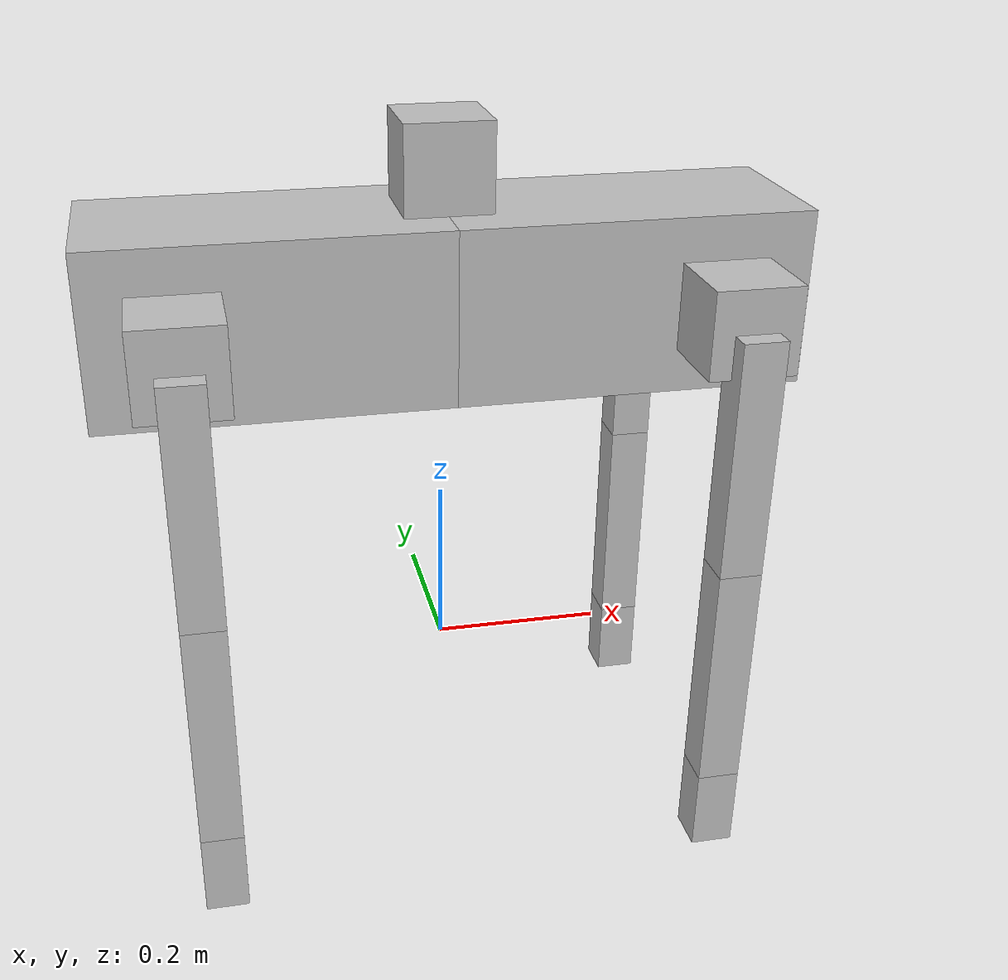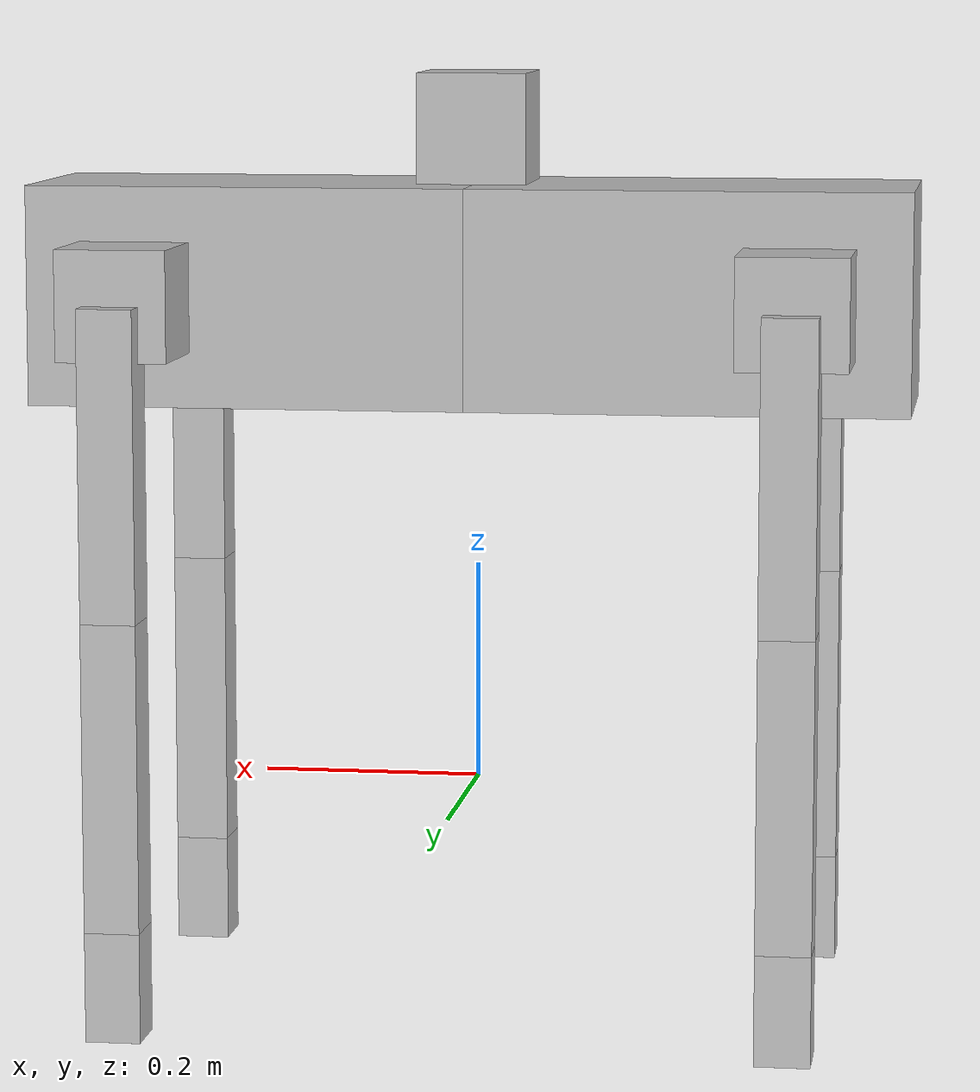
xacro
<?xml version="1.0"?>
<robot name="MR2">
    <link name="trunk_front">
	<collision>
            <geometry>
                <box size="0.4 0.2 0.2"/>
            </geometry>
            <material name="sliver">
                <color rgba="0.75 0.75 0.75 1"/>
            </material>
            <origin rpy="0 0 0" xyz="0.2 0. 0.45"/>
        </collision>
        <visual>
            <geometry>
                <box size="0.4 0.2 0.2"/>
            </geometry>
            <material name="sliver">
                <color rgba="0.75 0.75 0.75 1"/>
            </material>
            <origin rpy="0 0 0" xyz="0.2 0. 0.45"/>
        </visual>
	<inertial>
      	    <mass value="0.1" />
            <inertia ixx="0.0067" ixy="0" ixz="0.0"
        	iyy="0.016" iyz="0.0"
        	izz="0.016" />
    	</inertial>
    </link>

    <link name="trunk_back">
	<collision>
      	    <geometry>
                <box size="0.4 0.2 0.2"/>
            </geometry>
            <material name="sliver">
                <color rgba="0.75 0.75 0.75 1"/>
            </material>
            <origin rpy="0 0 0" xyz="-0.2 0. 0."/>
    	</collision>
        <visual>
            <geometry>
                <box size="0.4 0.2 0.2"/>
            </geometry>
            <material name="sliver">
                <color rgba="0.75 0.75 0.75 1"/>
            </material>
            <origin rpy="0 0 0" xyz="-0.2 0. 0."/>
        </visual>
	<inertial>
      	    <mass value=".1" />
            <inertia ixx="0.0067" ixy="0" ixz="0.0"
        	iyy="0.016" iyz="0.0"
        	izz="0.016" />
    	</inertial>
    </link>
    <joint name = "waist" type = "continuous">
        <axis xyz = "0 0 1"/>
        <parent link = "trunk_front"/>
        <child link = "trunk_back"/>
        <origin rpy = "0 0 0" xyz = "0 0 0.45"/>
    </joint>

    <link name="left_front_shoulder">
	<collision>
      	    <geometry>
                <box size="0.1 0.1 0.1"/>
            </geometry>
            <material name="sliver">
                <color rgba="0.75 0.75 0.75 1"/>
            </material>
            <origin rpy="0 0 0" xyz="0. 0.05 0."/>
    	</collision>
        <visual>
            <geometry>
                <box size="0.1 0.1 0.1"/>
            </geometry>
            <material name="sliver">
                <color rgba="0.75 0.75 0.75 1"/>
            </material>
            <origin rpy="0 0 0" xyz="0. 0.05 0."/>
        </visual>
	<inertial>
      	    <mass value="1." />
            <inertia ixx="0.0016" ixy="0" ixz="0.0"
        	iyy="0.0016" iyz="0.0"
        	izz="0.0016" />
    	</inertial>
    </link>
    <joint name = "left_front_shoulder_joint" type = "continuous">
        <axis xyz = "1 0 0"/>
        <parent link = "trunk_front"/>
        <child link = "left_front_shoulder"/>
        <origin rpy = "0 0 0" xyz = "0.3 0.1 0.45"/>
    </joint>

    <link name="left_front_3">
	<collision>
      	    <geometry>
                <box size="0.05 0.05 0.28"/>
            </geometry>
            <material name="sliver">
                <color rgba="0.75 0.75 0.75 1"/>
            </material>
            <origin rpy="0 0 0" xyz="0. 0. -0.14"/>
    	</collision>
        <visual>
            <geometry>
                <box size="0.05 0.05 0.28"/>
            </geometry>
            <material name="sliver">
                <color rgba="0.75 0.75 0.75 1"/>
            </material>
            <origin rpy="0 0 0" xyz="0. 0.0 -0.14"/>
        </visual>
	<inertial>
      	    <mass value="1." />
            <inertia ixx="0.0021" ixy="0" ixz="0.0"
        	iyy="0.0021" iyz="0.0"
        	izz="0.000417" />
    	</inertial>
    </link>
    <joint name = "left_front_3_joint" type = "continuous">
        <axis xyz = "0 1 0"/>
        <parent link = "left_front_shoulder"/>
        <child link = "left_front_3"/>
        <origin rpy = "0 0 0" xyz = "0. 0.1 0."/>
    </joint>

    <link name="left_front_2">
	<collision>
      	    <geometry>
                <box size="0.05 0.05 0.28"/>
            </geometry>
            <material name="sliver">
                <color rgba="0.75 0.75 0.75 1"/>
            </material>
            <origin rpy="0 0 0" xyz="0. 0. -0.14"/>
    	</collision>
        <visual>
            <geometry>
                <box size="0.05 0.05 0.28"/>
            </geometry>
            <material name="sliver">
                <color rgba="0.75 0.75 0.75 1"/>
            </material>
            <origin rpy="0 0 0" xyz="0. 0. -0.14"/>
        </visual>
	<inertial>
      	    <mass value="1." />
            <inertia ixx="0.00354" ixy="0" ixz="0.0"
        	iyy="0.00354" iyz="0.0"
        	izz="0.000417" />
    	</inertial>
    </link>
    <joint name = "left_front_2_joint" type = "continuous">
        <axis xyz = "0 1 0"/>
        <parent link = "left_front_3"/>
        <child link = "left_front_2"/>
        <origin rpy = "0 0 0" xyz = "0. 0. -0.28"/>
    </joint>

    <link name="left_front_1">
	<collision>
      	    <geometry>
                <box size="0.05 0.05 0.1"/>
            </geometry>
            <material name="sliver">
                <color rgba="0.75 0.75 0.75 1"/>
            </material>
            <origin rpy="0 0 0" xyz="0. 0. -0.05"/>
    	</collision>
        <visual>
            <geometry>
                <box size="0.05 0.05 0.1"/>
            </geometry>
            <material name="sliver">
                <color rgba="0.75 0.75 0.75 1"/>
            </material>
            <origin rpy="0 0 0" xyz="0. 0. -0.05"/>
        </visual>
	<inertial>
      	    <mass value="10." />
            <inertia ixx="0.0104" ixy="0" ixz="0.0"
        	iyy="0.0104" iyz="0.0"
        	izz="0.00417" />
    	</inertial>
	<surface>
	<friction>
          <ode>
            <mu>1</mu>
            <mu2>1</mu2>
          </ode>
        </friction>
      </surface>
    </link>
    <joint name = "left_front_1_joint" type = "continuous">
        <axis xyz = "0 1 0"/>
        <parent link = "left_front_2"/>
        <child link = "left_front_1"/>
        <origin rpy = "0 0 0" xyz = "0. 0. -0.28"/>
    </joint>

    <link name="right_front_shoulder">
	<collision>
      	    <geometry>
                <box size="0.1 0.1 0.1"/>
            </geometry>
            <material name="sliver">
                <color rgba="0.75 0.75 0.75 1"/>
            </material>
            <origin rpy="0 0 0" xyz="0. -0.05 0."/>
    	</collision>
        <visual>
            <geometry>
                <box size="0.1 0.1 0.1"/>
            </geometry>
            <material name="sliver">
                <color rgba="0.75 0.75 0.75 1"/>
            </material>
            <origin rpy="0 0 0" xyz="0. -0.05 0."/>
        </visual>
	<inertial>
      	    <mass value="1." />
            <inertia ixx="0.0016" ixy="0" ixz="0.0"
        	iyy="0.0016" iyz="0.0"
        	izz="0.0016" />
    	</inertial>
    </link>
    <joint name = "right_front_shoulder_joint" type = "continuous">
        <axis xyz = "1 0 0"/>
        <parent link = "trunk_front"/>
        <child link = "right_front_shoulder"/>
        <origin rpy = "0 0 0" xyz = "0.3 -0.1 0.45"/>
    </joint>

    <link name="right_front_3">
	<collision>
      	    <geometry>
                <box size="0.05 0.05 0.28"/>
            </geometry>
            <material name="sliver">
                <color rgba="0.75 0.75 0.75 1"/>
            </material>
            <origin rpy="0 0 0" xyz="0. 0. -0.14"/>
    	</collision>
        <visual>
            <geometry>
                <box size="0.05 0.05 0.28"/>
            </geometry>
            <material name="sliver">
                <color rgba="0.75 0.75 0.75 1"/>
            </material>
            <origin rpy="0 0 0" xyz="0. 0.0 -0.14"/>
        </visual>
	<inertial>
      	    <mass value="1." />
            <inertia ixx="0.0021" ixy="0" ixz="0.0"
        	iyy="0.0021" iyz="0.0"
        	izz="0.000417" />
    	</inertial>
    </link>
    <joint name = "right_front_3_joint" type = "continuous">
        <axis xyz = "0 1 0"/>
        <parent link = "right_front_shoulder"/>
        <child link = "right_front_3"/>
        <origin rpy = "0 0 0" xyz = "0. -0.1 0."/>
    </joint>

    <link name="right_front_2">
	<collision>
      	    <geometry>
                <box size="0.05 0.05 0.28"/>
            </geometry>
            <material name="sliver">
                <color rgba="0.75 0.75 0.75 1"/>
            </material>
            <origin rpy="0 0 0" xyz="0. 0. -0.14"/>
    	</collision>
        <visual>
            <geometry>
                <box size="0.05 0.05 0.28"/>
            </geometry>
            <material name="sliver">
                <color rgba="0.75 0.75 0.75 1"/>
            </material>
            <origin rpy="0 0 0" xyz="0. 0. -0.14"/>
        </visual>
	<inertial>
      	    <mass value="1." />
            <inertia ixx="0.00354" ixy="0" ixz="0.0"
        	iyy="0.00354" iyz="0.0"
        	izz="0.000417" />
    	</inertial>
    </link>
    <joint name = "right_front_2_joint" type = "continuous">
        <axis xyz = "0 1 0"/>
        <parent link = "right_front_3"/>
        <child link = "right_front_2"/>
        <origin rpy = "0 0 0" xyz = "0. 0. -0.28"/>
    </joint>

    <link name="right_front_1">
	<collision>
      	    <geometry>
                <box size="0.05 0.05 0.1"/>
            </geometry>
            <material name="sliver">
                <color rgba="0.75 0.75 0.75 1"/>
            </material>
            <origin rpy="0 0 0" xyz="0. 0. -0.05"/>
    	</collision>
        <visual>
            <geometry>
                <box size="0.05 0.05 0.1"/>
            </geometry>
            <material name="sliver">
                <color rgba="0.75 0.75 0.75 1"/>
            </material>
            <origin rpy="0 0 0" xyz="0. 0. -0.05"/>
        </visual>
	<inertial>
      	    <mass value="10." />
            <inertia ixx="0.00104" ixy="0" ixz="0.0"
        	iyy="0.0104" iyz="0.0"
        	izz="0.00417" />
    	</inertial>
	<surface>
	<friction>
          <ode>
            <mu>1</mu>
            <mu2>1</mu2>
          </ode>
        </friction>
      </surface>
    </link>
    <joint name = "right_front_1_joint" type = "continuous">
        <axis xyz = "0 1 0"/>
        <parent link = "right_front_2"/>
        <child link = "right_front_1"/>
        <origin rpy = "0 0 0" xyz = "0. 0. -0.28"/>
    </joint>

   <link name="left_back_shoulder">
	<collision>
      	    <geometry>
                <box size="0.1 0.1 0.1"/>
            </geometry>
            <material name="sliver">
                <color rgba="0.75 0.75 0.75 1"/>
            </material>
            <origin rpy="0 0 0" xyz="0. 0.05 0."/>
    	</collision>
        <visual>
            <geometry>
                <box size="0.1 0.1 0.1"/>
            </geometry>
            <material name="sliver">
                <color rgba="0.75 0.75 0.75 1"/>
            </material>
            <origin rpy="0 0 0" xyz="0. 0.05 0."/>
        </visual>
	<inertial>
      	    <mass value="1." />
            <inertia ixx="0.0016" ixy="0" ixz="0.0"
        	iyy="0.0016" iyz="0.0"
        	izz="0.0016" />
    	</inertial>
    </link>
    <joint name = "left_back_shoulder_joint" type = "continuous">
        <axis xyz = "1 0 0"/>
        <parent link = "trunk_back"/>
        <child link = "left_back_shoulder"/>
        <origin rpy = "0 0 0" xyz = "-0.3 0.1 0."/>
    </joint>

    <link name="left_back_3">
	<collision>
      	    <geometry>
                <box size="0.05 0.05 0.28"/>
            </geometry>
            <material name="sliver">
                <color rgba="0.75 0.75 0.75 1"/>
            </material>
            <origin rpy="0 0 0" xyz="0. 0. -0.14"/>
    	</collision>
        <visual>
            <geometry>
                <box size="0.05 0.05 0.28"/>
            </geometry>
            <material name="sliver">
                <color rgba="0.75 0.75 0.75 1"/>
            </material>
            <origin rpy="0 0 0" xyz="0. 0.0 -0.14"/>
        </visual>
	<inertial>
      	    <mass value="1." />
            <inertia ixx="0.0021" ixy="0" ixz="0.0"
        	iyy="0.0021" iyz="0.0"
        	izz="0.000417" />
    	</inertial>
    </link>
    <joint name = "left_back_3_joint" type = "continuous">
        <axis xyz = "0 1 0"/>
        <parent link = "left_back_shoulder"/>
        <child link = "left_back_3"/>
        <origin rpy = "0 0 0" xyz = "0. 0.1 0."/>
    </joint>

    <link name="left_back_2">
	<collision>
      	    <geometry>
                <box size="0.05 0.05 0.28"/>
            </geometry>
            <material name="sliver">
                <color rgba="0.75 0.75 0.75 1"/>
            </material>
            <origin rpy="0 0 0" xyz="0. 0. -0.14"/>
    	</collision>
        <visual>
            <geometry>
                <box size="0.05 0.05 0.28"/>
            </geometry>
            <material name="sliver">
                <color rgba="0.75 0.75 0.75 1"/>
            </material>
            <origin rpy="0 0 0" xyz="0. 0. -0.14"/>
        </visual>
	<inertial>
      	    <mass value="1." />
            <inertia ixx="0.00354" ixy="0" ixz="0.0"
        	iyy="0.00354" iyz="0.0"
        	izz="0.000417" />
    	</inertial>
    </link>
    <joint name = "left_back_2_joint" type = "continuous">
        <axis xyz = "0 1 0"/>
        <parent link = "left_back_3"/>
        <child link = "left_back_2"/>
        <origin rpy = "0 0 0" xyz = "0. 0. -0.28"/>
    </joint>

    <link name="left_back_1">
	<collision>
      	    <geometry>
                <box size="0.05 0.05 0.1"/>
            </geometry>
            <material name="sliver">
                <color rgba="0.75 0.75 0.75 1"/>
            </material>
            <origin rpy="0 0 0" xyz="0. 0. -0.05"/>
    	</collision>
        <visual>
            <geometry>
                <box size="0.05 0.05 0.1"/>
            </geometry>
            <material name="sliver">
                <color rgba="0.75 0.75 0.75 1"/>
            </material>
            <origin rpy="0 0 0" xyz="0. 0. -0.05"/>
        </visual>
	<inertial>
      	    <mass value="10." />
            <inertia ixx="0.0104" ixy="0" ixz="0.0"
        	iyy="0.0104" iyz="0.0"
        	izz="0.00417" />
    	</inertial>
	<surface>
	<friction>
          <ode>
            <mu>1</mu>
            <mu2>1</mu2>
          </ode>
        </friction>
      </surface>
    </link>
    <joint name = "left_back_1_joint" type = "continuous">
        <axis xyz = "0 1 0"/>
        <parent link = "left_back_2"/>
        <child link = "left_back_1"/>
        <origin rpy = "0 0 0" xyz = "0. 0. -0.28"/>
    </joint>

   <link name="right_back_shoulder">
	<collision>
      	    <geometry>
                <box size="0.1 0.1 0.1"/>
            </geometry>
            <material name="sliver">
                <color rgba="0.75 0.75 0.75 1"/>
            </material>
            <origin rpy="0 0 0" xyz="0. -0.05 0."/>
    	</collision>
        <visual>
            <geometry>
                <box size="0.1 0.1 0.1"/>
            </geometry>
            <material name="sliver">
                <color rgba="0.75 0.75 0.75 1"/>
            </material>
            <origin rpy="0 0 0" xyz="0. -0.05 0."/>
        </visual>
	<inertial>
      	    <mass value="1." />
            <inertia ixx="0.0016" ixy="0" ixz="0.0"
        	iyy="0.0016" iyz="0.0"
        	izz="0.0016" />
    	</inertial>
    </link>
    <joint name = "right_back_shoulder_joint" type = "continuous">
        <axis xyz = "1 0 0"/>
        <parent link = "trunk_back"/>
        <child link = "right_back_shoulder"/>
        <origin rpy = "0 0 0" xyz = "-0.3 -0.1 0."/>
    </joint>

    <link name="right_back_3">
	<collision>
      	    <geometry>
                <box size="0.05 0.05 0.28"/>
            </geometry>
            <material name="sliver">
                <color rgba="0.75 0.75 0.75 1"/>
            </material>
            <origin rpy="0 0 0" xyz="0. 0. -0.14"/>
    	</collision>
        <visual>
            <geometry>
                <box size="0.05 0.05 0.28"/>
            </geometry>
            <material name="sliver">
                <color rgba="0.75 0.75 0.75 1"/>
            </material>
            <origin rpy="0 0 0" xyz="0. 0.0 -0.14"/>
        </visual>
	<inertial>
      	    <mass value="1." />
            <inertia ixx="0.0021" ixy="0" ixz="0.0"
        	iyy="0.0021" iyz="0.0"
        	izz="0.000417" />
    	</inertial>
    </link>
    <joint name = "right_back_3_joint" type = "continuous">
        <axis xyz = "0 1 0"/>
        <parent link = "right_back_shoulder"/>
        <child link = "right_back_3"/>
        <origin rpy = "0 0 0" xyz = "0. -0.1 0."/>
    </joint>

    <link name="right_back_2">
	<collision>
      	    <geometry>
                <box size="0.05 0.05 0.28"/>
            </geometry>
            <material name="sliver">
                <color rgba="0.75 0.75 0.75 1"/>
            </material>
            <origin rpy="0 0 0" xyz="0. 0. -0.14"/>
    	</collision>
        <visual>
            <geometry>
                <box size="0.05 0.05 0.28"/>
            </geometry>
            <material name="sliver">
                <color rgba="0.75 0.75 0.75 1"/>
            </material>
            <origin rpy="0 0 0" xyz="0. 0. -0.14"/>
        </visual>
	<inertial>
      	    <mass value="1." />
            <inertia ixx="0.00354" ixy="0" ixz="0.0"
        	iyy="0.00354" iyz="0.0"
        	izz="0.000417" />
    	</inertial>
    </link>
    <joint name = "right_back_2_joint" type = "continuous">
        <axis xyz = "0 1 0"/>
        <parent link = "right_back_3"/>
        <child link = "right_back_2"/>
        <origin rpy = "0 0 0" xyz = "0. 0. -0.28"/>
    </joint>

    <link name="right_back_1">
	<collision>
      	    <geometry>
                <box size="0.05 0.05 0.1"/>
            </geometry>
            <material name="sliver">
                <color rgba="0.75 0.75 0.75 1"/>
            </material>
            <origin rpy="0 0 0" xyz="0. 0. -0.05"/>
    	</collision>
        <visual>
            <geometry>
                <box size="0.05 0.05 0.1"/>
            </geometry>
            <material name="sliver">
                <color rgba="0.75 0.75 0.75 1"/>
            </material>
            <origin rpy="0 0 0" xyz="0. 0. -0.05"/>
        </visual>
	<inertial>
      	    <mass value="10." />
            <inertia ixx="0.0104" ixy="0" ixz="0.0"
        	iyy="0.0104" iyz="0.0"
        	izz="0.00417" />
    	</inertial>
	<surface>
        <friction>
          <ode>
            <mu>1</mu>
            <mu2>1</mu2>
          </ode>
        </friction>
      </surface>
    </link>
    <joint name = "right_back_1_joint" type = "continuous">
        <axis xyz = "0 1 0"/>
        <parent link = "right_back_2"/>
        <child link = "right_back_1"/>
        <origin rpy = "0 0 0" xyz = "0. 0. -0.28"/>
    </joint>

    <link name="hokuyo_link">
	<collision>
      	    <geometry>
                <box size="0.1 0.1 0.1"/>
            </geometry>
            <material name="sliver">
                <color rgba="0.75 0.75 0.75 1"/>
            </material>
            <origin rpy="0 0 0" xyz="0. 0 0.05"/>
    	</collision>
        <visual>
            <geometry>
                <box size="0.1 0.1 0.1"/>
            </geometry>
            <material name="sliver">
                <color rgba="0.75 0.75 0.75 1"/>
            </material>
            <origin rpy="0 0 0" xyz="0. 0 0.05"/>
        </visual>
	<inertial>
      	    <mass value="1." />
            <inertia ixx="0.0016" ixy="0" ixz="0.0"
        	iyy="0.0016" iyz="0.0"
        	izz="0.0016" />
    	</inertial>
    </link>
    <joint name = "hokuyo_joint" type = "fixed">
        <axis xyz = "0 1 0"/>
        <parent link = "trunk_front"/>
        <child link = "hokuyo_link"/>
        <origin rpy = "0 0 0" xyz = "0 0 0.551"/>
    </joint>

    <!-- root link, on the ground just below the model origin -->
   <link name="base_footprint">
    <visual>
       <origin xyz="0 0 0" rpy="0 0 0" />
       <geometry>
         <box size="0.001 0.001 0.001" />
       </geometry>
     </visual>
   </link>
   <joint name="base_link_joint" type="fixed">
     <origin xyz="0.0 0 0.002" rpy="0 0 0" />
     <parent link="base_footprint"/>
     <child link="trunk_front" />
   </joint>
   <gazebo>
    <plugin name="object_controller" filename="libgazebo_ros_planar_move.so">
      <commandTopic>horse_cmd_vel</commandTopic>
      <odometryTopic>MR2_odom</odometryTopic>
      <odometryFrame>MR2_odom</odometryFrame>
      <odometryRate>20.0</odometryRate>
      <robotBaseFrame>base_footprint</robotBaseFrame>
    </plugin>
  </gazebo>
    <transmission name="tran_waist">
    	<type>transmission_interface/SimpleTransmission</type>
    	<joint name="waist">
      		<hardwareInterface>PositionJointInterface</hardwareInterface>
    	</joint>
    	<actuator name="motor_waist">
      	<hardwareInterface>PositionJointInterface</hardwareInterface>
      	<mechanicalReduction>1</mechanicalReduction>
    	</actuator>
    </transmission>

    <transmission name="tran_left_front_shoulder_joint">
    	<type>transmission_interface/SimpleTransmission</type>
    	<joint name="left_front_shoulder_joint">
      		<hardwareInterface>PositionJointInterface</hardwareInterface>
    	</joint>
    	<actuator name="motor_left_front_shoulder_joint">
      	<hardwareInterface>PositionJointInterface</hardwareInterface>
      	<mechanicalReduction>1</mechanicalReduction>
    	</actuator>
    </transmission>

    <transmission name="tran_left_front_3_joint">
    	<type>transmission_interface/SimpleTransmission</type>
    	<joint name="left_front_3_joint">
      		<hardwareInterface>PositionJointInterface</hardwareInterface>
    	</joint>
    	<actuator name="motor_left_front_3_joint">
      	<hardwareInterface>PositionJointInterface</hardwareInterface>
      	<mechanicalReduction>1</mechanicalReduction>
    	</actuator>
    </transmission>

    <transmission name="tran_left_front_2_joint">
    	<type>transmission_interface/SimpleTransmission</type>
    	<joint name="left_front_2_joint">
      		<hardwareInterface>PositionJointInterface</hardwareInterface>
    	</joint>
    	<actuator name="motor_left_front_2_joint">
      	<hardwareInterface>PositionJointInterface</hardwareInterface>
      	<mechanicalReduction>1</mechanicalReduction>
    	</actuator>
    </transmission>

    <transmission name="tran_left_front_1_joint">
    	<type>transmission_interface/SimpleTransmission</type>
    	<joint name="left_front_1_joint">
      		<hardwareInterface>PositionJointInterface</hardwareInterface>
    	</joint>
    	<actuator name="motor_left_front_1_joint">
      	<hardwareInterface>PositionJointInterface</hardwareInterface>
      	<mechanicalReduction>1</mechanicalReduction>
    	</actuator>
    </transmission>

    <transmission name="tran_right_front_shoulder_joint">
    	<type>transmission_interface/SimpleTransmission</type>
    	<joint name="right_front_shoulder_joint">
      		<hardwareInterface>PositionJointInterface</hardwareInterface>
    	</joint>
    	<actuator name="motor_right_front_shoulder_joint">
      	<hardwareInterface>PositionJointInterface</hardwareInterface>
      	<mechanicalReduction>1</mechanicalReduction>
    	</actuator>
    </transmission>

    <transmission name="tran_right_front_3_joint">
    	<type>transmission_interface/SimpleTransmission</type>
    	<joint name="right_front_3_joint">
      		<hardwareInterface>PositionJointInterface</hardwareInterface>
    	</joint>
    	<actuator name="motor_right_front_3_joint">
      	<hardwareInterface>PositionJointInterface</hardwareInterface>
      	<mechanicalReduction>1</mechanicalReduction>
    	</actuator>
    </transmission>

    <transmission name="tran_right_front_2_joint">
    	<type>transmission_interface/SimpleTransmission</type>
    	<joint name="right_front_2_joint">
      		<hardwareInterface>PositionJointInterface</hardwareInterface>
    	</joint>
    	<actuator name="motor_right_front_2_joint">
      	<hardwareInterface>PositionJointInterface</hardwareInterface>
      	<mechanicalReduction>1</mechanicalReduction>
    	</actuator>
    </transmission>

    <transmission name="tran_right_front_1_joint">
    	<type>transmission_interface/SimpleTransmission</type>
    	<joint name="right_front_1_joint">
      		<hardwareInterface>PositionJointInterface</hardwareInterface>
    	</joint>
    	<actuator name="motor_right_front_1_joint">
      	<hardwareInterface>PositionJointInterface</hardwareInterface>
      	<mechanicalReduction>1</mechanicalReduction>
    	</actuator>
    </transmission>

     <transmission name="tran_left_back_shoulder_joint">
    	<type>transmission_interface/SimpleTransmission</type>
    	<joint name="left_back_shoulder_joint">
      		<hardwareInterface>PositionJointInterface</hardwareInterface>
    	</joint>
    	<actuator name="motor_left_back_shoulder_joint">
      	<hardwareInterface>PositionJointInterface</hardwareInterface>
      	<mechanicalReduction>1</mechanicalReduction>
    	</actuator>
    </transmission>

    <transmission name="tran_left_back_3_joint">
    	<type>transmission_interface/SimpleTransmission</type>
    	<joint name="left_back_3_joint">
      		<hardwareInterface>PositionJointInterface</hardwareInterface>
    	</joint>
    	<actuator name="motor_left_back_3_joint">
      	<hardwareInterface>PositionJointInterface</hardwareInterface>
      	<mechanicalReduction>1</mechanicalReduction>
    	</actuator>
    </transmission>

    <transmission name="tran_left_back_2_joint">
    	<type>transmission_interface/SimpleTransmission</type>
    	<joint name="left_back_2_joint">
      		<hardwareInterface>PositionJointInterface</hardwareInterface>
    	</joint>
    	<actuator name="motor_left_back_2_joint">
      	<hardwareInterface>PositionJointInterface</hardwareInterface>
      	<mechanicalReduction>1</mechanicalReduction>
    	</actuator>
    </transmission>

    <transmission name="tran_left_back_1_joint">
    	<type>transmission_interface/SimpleTransmission</type>
    	<joint name="left_back_1_joint">
      		<hardwareInterface>PositionJointInterface</hardwareInterface>
    	</joint>
    	<actuator name="motor_left_back_1_joint">
      	<hardwareInterface>PositionJointInterface</hardwareInterface>
      	<mechanicalReduction>1</mechanicalReduction>
    	</actuator>
    </transmission>

    <transmission name="tran_right_back_shoulder_joint">
    	<type>transmission_interface/SimpleTransmission</type>
    	<joint name="right_back_shoulder_joint">
      		<hardwareInterface>PositionJointInterface</hardwareInterface>
    	</joint>
    	<actuator name="motor_right_back_shoulder_joint">
      	<hardwareInterface>PositionJointInterface</hardwareInterface>
      	<mechanicalReduction>1</mechanicalReduction>
    	</actuator>
    </transmission>

    <transmission name="tran_right_back_3_joint">
    	<type>transmission_interface/SimpleTransmission</type>
    	<joint name="right_back_3_joint">
      		<hardwareInterface>PositionJointInterface</hardwareInterface>
    	</joint>
    	<actuator name="motor_right_back_3_joint">
      	<hardwareInterface>PositionJointInterface</hardwareInterface>
      	<mechanicalReduction>1</mechanicalReduction>
    	</actuator>
    </transmission>

    <transmission name="tran_right_back_2_joint">
    	<type>transmission_interface/SimpleTransmission</type>
    	<joint name="right_back_2_joint">
      		<hardwareInterface>PositionJointInterface</hardwareInterface>
    	</joint>
    	<actuator name="motor_right_back_2_joint">
      	<hardwareInterface>PositionJointInterface</hardwareInterface>
      	<mechanicalReduction>1</mechanicalReduction>
    	</actuator>
    </transmission>

    <transmission name="tran_right_back_1_joint">
    	<type>transmission_interface/SimpleTransmission</type>
    	<joint name="right_back_1_joint">
      		<hardwareInterface>PositionJointInterface</hardwareInterface>
    	</joint>
    	<actuator name="motor_right_back_1_joint">
      	<hardwareInterface>PositionJointInterface</hardwareInterface>
      	<mechanicalReduction>1</mechanicalReduction>
    	</actuator>
    </transmission>

    <gazebo reference="left_front_1">
    	<mu1>1</mu1>
    	<mu2>1</mu2>
    </gazebo>
    <gazebo reference="right_front_1">
    	<mu1>1</mu1>
    	<mu2>1</mu2>
    </gazebo>
    <gazebo reference="left_back_1">
    	<mu1>1</mu1>
    	<mu2>1</mu2>
    </gazebo>
    <gazebo reference="right_back_1">
    	<mu1>1</mu1>
    	<mu2>1</mu2>
    </gazebo>

    <gazebo>
    	<plugin name="control" filename="libgazebo_ros_control.so"/>
    </gazebo>

        <gazebo reference="hokuyo_link">

        <sensor type="ray" name="hokuyo_sensor">

          <pose>0 0 0 0 0 0</pose>

          <visualize>false</visualize>

          <update_rate>40</update_rate>

          <ray>

            <scan>

              <horizontal>

                <samples>720</samples>

                <resolution>1</resolution>

                <min_angle>-3.14156926</min_angle>

                <max_angle>3.14156926</max_angle>

              </horizontal>

            </scan>

            <range>

              <min>0.10</min>

              <max>30.0</max>

              <resolution>0.01</resolution>

            </range>

            <noise>

              <type>gaussian</type>

              <mean>0.0</mean>

              <stddev>0.01</stddev>

            </noise>

          </ray>

          <plugin name="hokuyo_controller" filename="libgazebo_ros_laser.so">

            <topicName>/scan</topicName>

            <frameName>hokuyo_link</frameName>

          </plugin>

        </sensor>

      </gazebo>
</robot>
